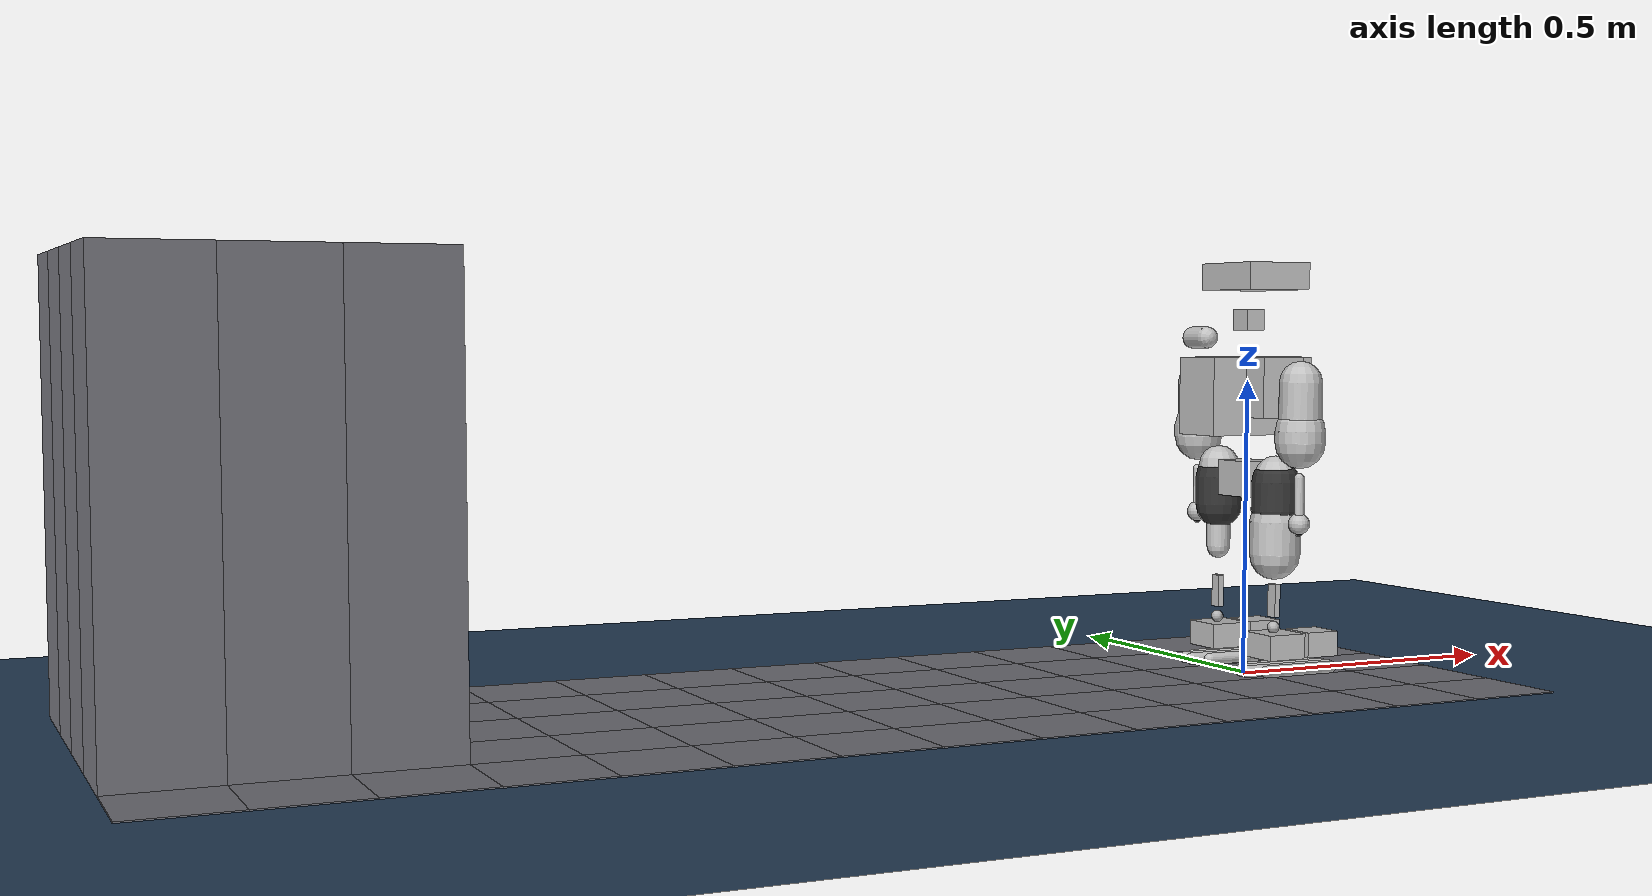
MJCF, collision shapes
<mujoco model="PiPlus_S_12L8A0G2H0W_SSE_ZedMini_260831">
  <compiler angle="radian" meshdir="../meshes/"/>

  <asset>
    <mesh name="base_link" content_type="model/stl" file="base_link.STL"/>
    <mesh name="torso_link" content_type="model/stl" file="torso_link.STL"/>
    <mesh name="r_shoulder_pitch_link" content_type="model/stl" file="r_shoulder_pitch_link.STL"/>
    <mesh name="r_shoulder_roll_link" content_type="model/stl" file="r_shoulder_roll_link.STL"/>
    <mesh name="r_upper_arm_link" content_type="model/stl" file="r_upper_arm_link.STL"/>
    <mesh name="r_elbow_link" content_type="model/stl" file="r_elbow_link.STL"/>
    <mesh name="r_wrist_link" content_type="model/stl" file="r_wrist_link.STL"/>
    <mesh name="l_shoulder_pitch_link" content_type="model/stl" file="l_shoulder_pitch_link.STL"/>
    <mesh name="l_shoulder_roll_link" content_type="model/stl" file="l_shoulder_roll_link.STL"/>
    <mesh name="l_upper_arm_link" content_type="model/stl" file="l_upper_arm_link.STL"/>
    <mesh name="l_elbow_link" content_type="model/stl" file="l_elbow_link.STL"/>
    <mesh name="l_wrist_link" content_type="model/stl" file="l_wrist_link.STL"/>
    <mesh name="head_yaw_link" content_type="model/stl" file="head_yaw_link.STL"/>
    <mesh name="head_pitch_link" content_type="model/stl" file="head_pitch_link.STL"/>
    <mesh name="camera_link" content_type="model/stl" file="camera_link.STL"/>
    <mesh name="r_hip_pitch_link" content_type="model/stl" file="r_hip_pitch_link.STL"/>
    <mesh name="r_hip_roll_link" content_type="model/stl" file="r_hip_roll_link.STL"/>
    <mesh name="r_thigh_link" content_type="model/stl" file="r_thigh_link.STL"/>
    <mesh name="r_calf_link" content_type="model/stl" file="r_calf_link.STL"/>
    <mesh name="r_ankle_pitch_link" content_type="model/stl" file="r_ankle_pitch_link.STL"/>
    <mesh name="r_ankle_roll_link" content_type="model/stl" file="r_ankle_roll_link.STL"/>
    <mesh name="l_hip_pitch_link" content_type="model/stl" file="l_hip_pitch_link.STL"/>
    <mesh name="l_hip_roll_link" content_type="model/stl" file="l_hip_roll_link.STL"/>
    <mesh name="l_thigh_link" content_type="model/stl" file="l_thigh_link.STL"/>
    <mesh name="l_calf_link" content_type="model/stl" file="l_calf_link.STL"/>
    <mesh name="l_ankle_pitch_link" content_type="model/stl" file="l_ankle_pitch_link.STL"/>
    <mesh name="l_ankle_roll_link" content_type="model/stl" file="l_ankle_roll_link.STL"/>
      <mesh name="parc_ms_terrain" file="/tmp/parc_ms_toe_adjusted/climbing_up_down_terrain_001_aug017_dm_aug5/climbing_up_down_terrain_001_aug017_dm_aug5_terrain_scaled_0.396471_0.396471_0.396471.obj"/>
</asset>

  <worldbody>
    <geom name="multi_boxes_parc_ms_terrain_visual" type="mesh" mesh="parc_ms_terrain" contype="0" conaffinity="0" rgba="0.45 0.45 0.48 1"/>
    <geom name="multi_boxes_parc_ms_terrain_cell_0_0" type="box" pos="-1.81084980 -0.30556145 0.00100000" size="0.07929430 0.07929415 0.00100000" contype="1" conaffinity="1" rgba="0.45 0.45 0.48 1"/>
    <geom name="multi_boxes_parc_ms_terrain_cell_0_1" type="box" pos="-1.81084980 -0.14697320 0.34806509" size="0.07929430 0.07929410 0.34806509" contype="1" conaffinity="1" rgba="0.45 0.45 0.48 1"/>
    <geom name="multi_boxes_parc_ms_terrain_cell_0_2" type="box" pos="-1.81084980 0.01161500 0.34806509" size="0.07929430 0.07929410 0.34806509" contype="1" conaffinity="1" rgba="0.45 0.45 0.48 1"/>
    <geom name="multi_boxes_parc_ms_terrain_cell_0_3" type="box" pos="-1.81084980 0.17020325 0.34806509" size="0.07929430 0.07929415 0.34806509" contype="1" conaffinity="1" rgba="0.45 0.45 0.48 1"/>
    <geom name="multi_boxes_parc_ms_terrain_cell_0_4" type="box" pos="-1.81084980 0.32879150 0.34806509" size="0.07929430 0.07929410 0.34806509" contype="1" conaffinity="1" rgba="0.45 0.45 0.48 1"/>
    <geom name="multi_boxes_parc_ms_terrain_cell_1_0" type="box" pos="-1.65226160 -0.30556145 0.00100000" size="0.07929390 0.07929415 0.00100000" contype="1" conaffinity="1" rgba="0.45 0.45 0.48 1"/>
    <geom name="multi_boxes_parc_ms_terrain_cell_1_1" type="box" pos="-1.65226160 -0.14697320 0.34806509" size="0.07929390 0.07929410 0.34806509" contype="1" conaffinity="1" rgba="0.45 0.45 0.48 1"/>
    <geom name="multi_boxes_parc_ms_terrain_cell_1_2" type="box" pos="-1.65226160 0.01161500 0.34806509" size="0.07929390 0.07929410 0.34806509" contype="1" conaffinity="1" rgba="0.45 0.45 0.48 1"/>
    <geom name="multi_boxes_parc_ms_terrain_cell_1_3" type="box" pos="-1.65226160 0.17020325 0.34806509" size="0.07929390 0.07929415 0.34806509" contype="1" conaffinity="1" rgba="0.45 0.45 0.48 1"/>
    <geom name="multi_boxes_parc_ms_terrain_cell_1_4" type="box" pos="-1.65226160 0.32879150 0.34806509" size="0.07929390 0.07929410 0.34806509" contype="1" conaffinity="1" rgba="0.45 0.45 0.48 1"/>
    <geom name="multi_boxes_parc_ms_terrain_cell_2_0" type="box" pos="-1.49367335 -0.30556145 0.00100000" size="0.07929435 0.07929415 0.00100000" contype="1" conaffinity="1" rgba="0.45 0.45 0.48 1"/>
    <geom name="multi_boxes_parc_ms_terrain_cell_2_1" type="box" pos="-1.49367335 -0.14697320 0.34806509" size="0.07929435 0.07929410 0.34806509" contype="1" conaffinity="1" rgba="0.45 0.45 0.48 1"/>
    <geom name="multi_boxes_parc_ms_terrain_cell_2_2" type="box" pos="-1.49367335 0.01161500 0.34806509" size="0.07929435 0.07929410 0.34806509" contype="1" conaffinity="1" rgba="0.45 0.45 0.48 1"/>
    <geom name="multi_boxes_parc_ms_terrain_cell_2_3" type="box" pos="-1.49367335 0.17020325 0.34806509" size="0.07929435 0.07929415 0.34806509" contype="1" conaffinity="1" rgba="0.45 0.45 0.48 1"/>
    <geom name="multi_boxes_parc_ms_terrain_cell_2_4" type="box" pos="-1.49367335 0.32879150 0.34806509" size="0.07929435 0.07929410 0.34806509" contype="1" conaffinity="1" rgba="0.45 0.45 0.48 1"/>
    <geom name="multi_boxes_parc_ms_terrain_cell_3_0" type="box" pos="-1.33508510 -0.30556145 0.00100000" size="0.07929390 0.07929415 0.00100000" contype="1" conaffinity="1" rgba="0.45 0.45 0.48 1"/>
    <geom name="multi_boxes_parc_ms_terrain_cell_3_1" type="box" pos="-1.33508510 -0.14697320 0.00100000" size="0.07929390 0.07929410 0.00100000" contype="1" conaffinity="1" rgba="0.45 0.45 0.48 1"/>
    <geom name="multi_boxes_parc_ms_terrain_cell_3_2" type="box" pos="-1.33508510 0.01161500 0.00100000" size="0.07929390 0.07929410 0.00100000" contype="1" conaffinity="1" rgba="0.45 0.45 0.48 1"/>
    <geom name="multi_boxes_parc_ms_terrain_cell_3_3" type="box" pos="-1.33508510 0.17020325 0.00100000" size="0.07929390 0.07929415 0.00100000" contype="1" conaffinity="1" rgba="0.45 0.45 0.48 1"/>
    <geom name="multi_boxes_parc_ms_terrain_cell_3_4" type="box" pos="-1.33508510 0.32879150 0.00100000" size="0.07929390 0.07929410 0.00100000" contype="1" conaffinity="1" rgba="0.45 0.45 0.48 1"/>
    <geom name="multi_boxes_parc_ms_terrain_cell_4_0" type="box" pos="-1.17649710 -0.30556145 0.00100000" size="0.07929410 0.07929415 0.00100000" contype="1" conaffinity="1" rgba="0.45 0.45 0.48 1"/>
    <geom name="multi_boxes_parc_ms_terrain_cell_4_1" type="box" pos="-1.17649710 -0.14697320 0.00100000" size="0.07929410 0.07929410 0.00100000" contype="1" conaffinity="1" rgba="0.45 0.45 0.48 1"/>
    <geom name="multi_boxes_parc_ms_terrain_cell_4_2" type="box" pos="-1.17649710 0.01161500 0.00100000" size="0.07929410 0.07929410 0.00100000" contype="1" conaffinity="1" rgba="0.45 0.45 0.48 1"/>
    <geom name="multi_boxes_parc_ms_terrain_cell_4_3" type="box" pos="-1.17649710 0.17020325 0.00100000" size="0.07929410 0.07929415 0.00100000" contype="1" conaffinity="1" rgba="0.45 0.45 0.48 1"/>
    <geom name="multi_boxes_parc_ms_terrain_cell_4_4" type="box" pos="-1.17649710 0.32879150 0.00100000" size="0.07929410 0.07929410 0.00100000" contype="1" conaffinity="1" rgba="0.45 0.45 0.48 1"/>
    <geom name="multi_boxes_parc_ms_terrain_cell_5_0" type="box" pos="-1.01790870 -0.30556145 0.00100000" size="0.07929430 0.07929415 0.00100000" contype="1" conaffinity="1" rgba="0.45 0.45 0.48 1"/>
    <geom name="multi_boxes_parc_ms_terrain_cell_5_1" type="box" pos="-1.01790870 -0.14697320 0.00100000" size="0.07929430 0.07929410 0.00100000" contype="1" conaffinity="1" rgba="0.45 0.45 0.48 1"/>
    <geom name="multi_boxes_parc_ms_terrain_cell_5_2" type="box" pos="-1.01790870 0.01161500 0.00100000" size="0.07929430 0.07929410 0.00100000" contype="1" conaffinity="1" rgba="0.45 0.45 0.48 1"/>
    <geom name="multi_boxes_parc_ms_terrain_cell_5_3" type="box" pos="-1.01790870 0.17020325 0.00100000" size="0.07929430 0.07929415 0.00100000" contype="1" conaffinity="1" rgba="0.45 0.45 0.48 1"/>
    <geom name="multi_boxes_parc_ms_terrain_cell_5_4" type="box" pos="-1.01790870 0.32879150 0.00100000" size="0.07929430 0.07929410 0.00100000" contype="1" conaffinity="1" rgba="0.45 0.45 0.48 1"/>
    <geom name="multi_boxes_parc_ms_terrain_cell_6_0" type="box" pos="-0.85932045 -0.30556145 0.00100000" size="0.07929395 0.07929415 0.00100000" contype="1" conaffinity="1" rgba="0.45 0.45 0.48 1"/>
    <geom name="multi_boxes_parc_ms_terrain_cell_6_1" type="box" pos="-0.85932045 -0.14697320 0.00100000" size="0.07929395 0.07929410 0.00100000" contype="1" conaffinity="1" rgba="0.45 0.45 0.48 1"/>
    <geom name="multi_boxes_parc_ms_terrain_cell_6_2" type="box" pos="-0.85932045 0.01161500 0.00100000" size="0.07929395 0.07929410 0.00100000" contype="1" conaffinity="1" rgba="0.45 0.45 0.48 1"/>
    <geom name="multi_boxes_parc_ms_terrain_cell_6_3" type="box" pos="-0.85932045 0.17020325 0.00100000" size="0.07929395 0.07929415 0.00100000" contype="1" conaffinity="1" rgba="0.45 0.45 0.48 1"/>
    <geom name="multi_boxes_parc_ms_terrain_cell_6_4" type="box" pos="-0.85932045 0.32879150 0.00100000" size="0.07929395 0.07929410 0.00100000" contype="1" conaffinity="1" rgba="0.45 0.45 0.48 1"/>
    <geom name="multi_boxes_parc_ms_terrain_cell_7_0" type="box" pos="-0.70073220 -0.30556145 0.00100000" size="0.07929430 0.07929415 0.00100000" contype="1" conaffinity="1" rgba="0.45 0.45 0.48 1"/>
    <geom name="multi_boxes_parc_ms_terrain_cell_7_1" type="box" pos="-0.70073220 -0.14697320 0.00100000" size="0.07929430 0.07929410 0.00100000" contype="1" conaffinity="1" rgba="0.45 0.45 0.48 1"/>
    <geom name="multi_boxes_parc_ms_terrain_cell_7_2" type="box" pos="-0.70073220 0.01161500 0.00100000" size="0.07929430 0.07929410 0.00100000" contype="1" conaffinity="1" rgba="0.45 0.45 0.48 1"/>
    <geom name="multi_boxes_parc_ms_terrain_cell_7_3" type="box" pos="-0.70073220 0.17020325 0.00100000" size="0.07929430 0.07929415 0.00100000" contype="1" conaffinity="1" rgba="0.45 0.45 0.48 1"/>
    <geom name="multi_boxes_parc_ms_terrain_cell_7_4" type="box" pos="-0.70073220 0.32879150 0.00100000" size="0.07929430 0.07929410 0.00100000" contype="1" conaffinity="1" rgba="0.45 0.45 0.48 1"/>
    <geom name="multi_boxes_parc_ms_terrain_cell_8_0" type="box" pos="-0.54214380 -0.30556145 0.00100000" size="0.07929410 0.07929415 0.00100000" contype="1" conaffinity="1" rgba="0.45 0.45 0.48 1"/>
    <geom name="multi_boxes_parc_ms_terrain_cell_8_1" type="box" pos="-0.54214380 -0.14697320 0.00100000" size="0.07929410 0.07929410 0.00100000" contype="1" conaffinity="1" rgba="0.45 0.45 0.48 1"/>
    <geom name="multi_boxes_parc_ms_terrain_cell_8_2" type="box" pos="-0.54214380 0.01161500 0.00100000" size="0.07929410 0.07929410 0.00100000" contype="1" conaffinity="1" rgba="0.45 0.45 0.48 1"/>
    <geom name="multi_boxes_parc_ms_terrain_cell_8_3" type="box" pos="-0.54214380 0.17020325 0.00100000" size="0.07929410 0.07929415 0.00100000" contype="1" conaffinity="1" rgba="0.45 0.45 0.48 1"/>
    <geom name="multi_boxes_parc_ms_terrain_cell_8_4" type="box" pos="-0.54214380 0.32879150 0.00100000" size="0.07929410 0.07929410 0.00100000" contype="1" conaffinity="1" rgba="0.45 0.45 0.48 1"/>
    <geom name="multi_boxes_parc_ms_terrain_cell_9_0" type="box" pos="-0.38355575 -0.30556145 0.00100000" size="0.07929395 0.07929415 0.00100000" contype="1" conaffinity="1" rgba="0.45 0.45 0.48 1"/>
    <geom name="multi_boxes_parc_ms_terrain_cell_9_1" type="box" pos="-0.38355575 -0.14697320 0.00100000" size="0.07929395 0.07929410 0.00100000" contype="1" conaffinity="1" rgba="0.45 0.45 0.48 1"/>
    <geom name="multi_boxes_parc_ms_terrain_cell_9_2" type="box" pos="-0.38355575 0.01161500 0.00100000" size="0.07929395 0.07929410 0.00100000" contype="1" conaffinity="1" rgba="0.45 0.45 0.48 1"/>
    <geom name="multi_boxes_parc_ms_terrain_cell_9_3" type="box" pos="-0.38355575 0.17020325 0.00100000" size="0.07929395 0.07929415 0.00100000" contype="1" conaffinity="1" rgba="0.45 0.45 0.48 1"/>
    <geom name="multi_boxes_parc_ms_terrain_cell_9_4" type="box" pos="-0.38355575 0.32879150 0.00100000" size="0.07929395 0.07929410 0.00100000" contype="1" conaffinity="1" rgba="0.45 0.45 0.48 1"/>
    <geom name="multi_boxes_parc_ms_terrain_cell_10_0" type="box" pos="-0.22496750 -0.30556145 0.00100000" size="0.07929430 0.07929415 0.00100000" contype="1" conaffinity="1" rgba="0.45 0.45 0.48 1"/>
    <geom name="multi_boxes_parc_ms_terrain_cell_10_1" type="box" pos="-0.22496750 -0.14697320 0.00100000" size="0.07929430 0.07929410 0.00100000" contype="1" conaffinity="1" rgba="0.45 0.45 0.48 1"/>
    <geom name="multi_boxes_parc_ms_terrain_cell_10_2" type="box" pos="-0.22496750 0.01161500 0.00100000" size="0.07929430 0.07929410 0.00100000" contype="1" conaffinity="1" rgba="0.45 0.45 0.48 1"/>
    <geom name="multi_boxes_parc_ms_terrain_cell_10_3" type="box" pos="-0.22496750 0.17020325 0.00100000" size="0.07929430 0.07929415 0.00100000" contype="1" conaffinity="1" rgba="0.45 0.45 0.48 1"/>
    <geom name="multi_boxes_parc_ms_terrain_cell_10_4" type="box" pos="-0.22496750 0.32879150 0.00100000" size="0.07929430 0.07929410 0.00100000" contype="1" conaffinity="1" rgba="0.45 0.45 0.48 1"/>
    <geom name="multi_boxes_parc_ms_terrain_cell_11_0" type="box" pos="-0.06637910 -0.30556145 0.00100000" size="0.07929410 0.07929415 0.00100000" contype="1" conaffinity="1" rgba="0.45 0.45 0.48 1"/>
    <geom name="multi_boxes_parc_ms_terrain_cell_11_1" type="box" pos="-0.06637910 -0.14697320 0.00100000" size="0.07929410 0.07929410 0.00100000" contype="1" conaffinity="1" rgba="0.45 0.45 0.48 1"/>
    <geom name="multi_boxes_parc_ms_terrain_cell_11_2" type="box" pos="-0.06637910 0.01161500 0.00100000" size="0.07929410 0.07929410 0.00100000" contype="1" conaffinity="1" rgba="0.45 0.45 0.48 1"/>
    <geom name="multi_boxes_parc_ms_terrain_cell_11_3" type="box" pos="-0.06637910 0.17020325 0.00100000" size="0.07929410 0.07929415 0.00100000" contype="1" conaffinity="1" rgba="0.45 0.45 0.48 1"/>
    <geom name="multi_boxes_parc_ms_terrain_cell_11_4" type="box" pos="-0.06637910 0.32879150 0.00100000" size="0.07929410 0.07929410 0.00100000" contype="1" conaffinity="1" rgba="0.45 0.45 0.48 1"/>
    <geom name="multi_boxes_parc_ms_terrain_cell_12_0" type="box" pos="0.09220915 -0.30556145 0.00100000" size="0.07929415 0.07929415 0.00100000" contype="1" conaffinity="1" rgba="0.45 0.45 0.48 1"/>
    <geom name="multi_boxes_parc_ms_terrain_cell_12_1" type="box" pos="0.09220915 -0.14697320 0.00100000" size="0.07929415 0.07929410 0.00100000" contype="1" conaffinity="1" rgba="0.45 0.45 0.48 1"/>
    <geom name="multi_boxes_parc_ms_terrain_cell_12_2" type="box" pos="0.09220915 0.01161500 0.00100000" size="0.07929415 0.07929410 0.00100000" contype="1" conaffinity="1" rgba="0.45 0.45 0.48 1"/>
    <geom name="multi_boxes_parc_ms_terrain_cell_12_3" type="box" pos="0.09220915 0.17020325 0.00100000" size="0.07929415 0.07929415 0.00100000" contype="1" conaffinity="1" rgba="0.45 0.45 0.48 1"/>
    <geom name="multi_boxes_parc_ms_terrain_cell_12_4" type="box" pos="0.09220915 0.32879150 0.00100000" size="0.07929415 0.07929410 0.00100000" contype="1" conaffinity="1" rgba="0.45 0.45 0.48 1"/>
    <geom name="multi_boxes_parc_ms_terrain_cell_13_0" type="box" pos="0.25079720 -0.30556145 0.00100000" size="0.07929390 0.07929415 0.00100000" contype="1" conaffinity="1" rgba="0.45 0.45 0.48 1"/>
    <geom name="multi_boxes_parc_ms_terrain_cell_13_1" type="box" pos="0.25079720 -0.14697320 0.00100000" size="0.07929390 0.07929410 0.00100000" contype="1" conaffinity="1" rgba="0.45 0.45 0.48 1"/>
    <geom name="multi_boxes_parc_ms_terrain_cell_13_2" type="box" pos="0.25079720 0.01161500 0.00100000" size="0.07929390 0.07929410 0.00100000" contype="1" conaffinity="1" rgba="0.45 0.45 0.48 1"/>
    <geom name="multi_boxes_parc_ms_terrain_cell_13_3" type="box" pos="0.25079720 0.17020325 0.00100000" size="0.07929390 0.07929415 0.00100000" contype="1" conaffinity="1" rgba="0.45 0.45 0.48 1"/>
    <geom name="multi_boxes_parc_ms_terrain_cell_13_4" type="box" pos="0.25079720 0.32879150 0.00100000" size="0.07929390 0.07929410 0.00100000" contype="1" conaffinity="1" rgba="0.45 0.45 0.48 1"/>

    <body name="base_link" pos="0 0 0.385">
      <inertial pos="-0.00056268 -1.51e-06 -0.0400787" quat="0.701382 0.707528 -0.0627262 0.0594389" mass="1.08902" diaginertia="0.00149612 0.00139626 0.000844654"/>
      <joint name="floating_base_joint" type="free" limited="false" actuatorfrclimited="false"/>
      <geom type="mesh" contype="0" conaffinity="0" group="1" density="0" rgba="0.752941 0.752941 0.752941 1" mesh="base_link"/>
      <geom size="0.03 0.04 0.03" pos="0 0 -0.05" type="box" rgba="0.752941 0.752941 0.752941 1"/>
      <body name="torso_link">
        <inertial pos="0 0 0.0896942" mass="4.39956" diaginertia="0.0243789 0.0236715 0.0227069"/>
        <geom type="mesh" contype="0" conaffinity="0" group="1" density="0" rgba="0.752941 0.752941 0.752941 1" mesh="torso_link"/>
        <geom size="0.099 0.05 0.065" pos="-0.005 0 0.09" type="box" rgba="0.752941 0.752941 0.752941 1"/>
        <geom size="0.04 0.025 0.05" pos="0 0.075 0.105" type="box" rgba="0.752941 0.752941 0.752941 1"/>
        <geom size="0.04 0.025 0.05" pos="0 -0.075 0.105" type="box" rgba="0.752941 0.752941 0.752941 1"/>
        <geom size="0.018 0.02" pos="-0.098 0 0.188" quat="0.707388 0.706825 0 0" type="capsule" rgba="0.752941 0.752941 0.752941 1"/>
        <body name="r_shoulder_pitch_link" pos="0 -0.1084 0.117">
          <inertial pos="0.00113579 -0.0175416 0.00021416" quat="-0.0449541 0.707378 0.01924 0.705142" mass="0.200908" diaginertia="0.000216269 0.000187175 0.000100576"/>
          <joint name="r_shoulder_pitch_joint" pos="0 0 0" axis="0 1 0" range="-4.18 1.04" actuatorfrcrange="-10 10" damping="0.02"/>
          <geom type="mesh" contype="0" conaffinity="0" group="1" density="0" rgba="0.752941 0.752941 0.752941 1" mesh="r_shoulder_pitch_link"/>
          <body name="r_shoulder_roll_link" pos="0 -0.038 0">
            <inertial pos="-0.00127795 -0.00018558 -0.00371445" quat="0.704743 -0.0791118 -0.0370215 0.704065" mass="0.354915" diaginertia="0.000196009 0.000184066 0.000173735"/>
            <joint name="r_shoulder_roll_joint" pos="0 0 0" axis="1 0 0" range="-3.092 0.015" actuatorfrcrange="-10 10" damping="0.02"/>
            <geom type="mesh" contype="0" conaffinity="0" group="1" density="0" rgba="0.752941 0.752941 0.752941 1" mesh="r_shoulder_roll_link"/>
            <body name="r_upper_arm_link" pos="0 0 -0.0724">
              <inertial pos="-0.00011614 0.00062446 0.00362573" quat="0.999924 -0.00707441 0.00536766 -0.00855162" mass="0.452217" diaginertia="0.000445008 0.00034182 0.000290672"/>
              <joint name="r_upper_arm_joint" pos="0 0 0" axis="0 0 1" range="-2.16 2.16" actuatorfrcrange="-10 10" damping="0.02"/>
              <geom type="mesh" contype="0" conaffinity="0" group="1" density="0" rgba="0.752941 0.752941 0.752941 1" mesh="r_upper_arm_link"/>
              <geom size="0.035 0.03" pos="0 0 0.04" type="capsule" rgba="0.752941 0.752941 0.752941 1"/>
              <geom size="0.041 0.01" pos="0 0 -0.02" type="capsule" rgba="0.752941 0.752941 0.752941 1"/>
              <body name="r_elbow_link" pos="0 0 -0.038">
                <inertial pos="2.953e-05 -0.00130322 -0.00200304" quat="0.574175 0.818475 0.0144276 -0.0146403" mass="0.326039" diaginertia="0.000161159 0.000149882 0.000144609"/>
                <joint name="r_elbow_joint" pos="0 0 0" axis="0 1 0" range="-2 2" actuatorfrcrange="-10 10" damping="0.02"/>
                <geom type="mesh" contype="0" conaffinity="0" group="1" density="0" rgba="0.752941 0.752941 0.752941 1" mesh="r_elbow_link"/>
                <body name="r_wrist_link" pos="0 0 -0.029">
                  <inertial pos="4.035e-05 -6.39e-06 -0.0382387" quat="0.508453 -0.00074672 -0.000272736 0.86109" mass="0.0720478" diaginertia="0.000113775 0.000113325 1.11197e-05"/>
                  <geom type="mesh" contype="0" conaffinity="0" group="1" density="0" rgba="0.752941 0.752941 0.752941 1" mesh="r_wrist_link"/>
                  <geom size="0.008 0.03" pos="0 0 -0.05" type="capsule" rgba="0.752941 0.752941 0.752941 1"/>
                  <geom size="0.0175" pos="0 0 -0.095" rgba="0.752941 0.752941 0.752941 1"/>
                  <body name="r_hand_tip_contact" pos="0 0 -0.11">
                    <geom name="r_hand_tip_contact" type="sphere" size="0.006" contype="1" conaffinity="1" rgba="0.2 0.2 0.2 1"/>
                  </body>
                </body>
              </body>
            </body>
          </body>
        </body>
        <body name="l_shoulder_pitch_link" pos="0 0.1084 0.117">
          <inertial pos="0.00113579 0.0175416 0.00021416" quat="0.0449541 0.707378 -0.01924 0.705142" mass="0.200908" diaginertia="0.000216269 0.000187175 0.000100576"/>
          <joint name="l_shoulder_pitch_joint" pos="0 0 0" axis="0 1 0" range="-4.18 1.04" actuatorfrcrange="-10 10" damping="0.02"/>
          <geom type="mesh" contype="0" conaffinity="0" group="1" density="0" rgba="0.752941 0.752941 0.752941 1" mesh="l_shoulder_pitch_link"/>
          <body name="l_shoulder_roll_link" pos="0 0.038 0">
            <inertial pos="-0.00127795 0.00018558 -0.00371445" quat="0.704065 -0.0370215 -0.0791118 0.704743" mass="0.354915" diaginertia="0.000196009 0.000184066 0.000173735"/>
            <joint name="l_shoulder_roll_joint" pos="0 0 0" axis="1 0 0" range="-0.015 3.092" actuatorfrcrange="-10 10" damping="0.02"/>
            <geom type="mesh" contype="0" conaffinity="0" group="1" density="0" rgba="0.752941 0.752941 0.752941 1" mesh="l_shoulder_roll_link"/>
            <body name="l_upper_arm_link" pos="0 0 -0.0724">
              <inertial pos="-0.00011614 -0.00062446 0.00362573" quat="0.999924 0.00707441 0.00536766 0.00855162" mass="0.452217" diaginertia="0.000445008 0.00034182 0.000290672"/>
              <joint name="l_upper_arm_joint" pos="0 0 0" axis="0 0 1" range="-2.16 2.16" actuatorfrcrange="-10 10" damping="0.02"/>
              <geom type="mesh" contype="0" conaffinity="0" group="1" density="0" rgba="0.752941 0.752941 0.752941 1" mesh="l_upper_arm_link"/>
              <geom size="0.035 0.03" pos="0 0 0.04" type="capsule" rgba="0.752941 0.752941 0.752941 1"/>
              <geom size="0.041 0.01" pos="0 0 -0.02" type="capsule" rgba="0.752941 0.752941 0.752941 1"/>
              <body name="l_elbow_link" pos="0 0 -0.038">
                <inertial pos="2.953e-05 0.00130322 -0.00200304" quat="0.818475 0.574175 0.0146403 -0.0144276" mass="0.326039" diaginertia="0.000161159 0.000149882 0.000144609"/>
                <joint name="l_elbow_joint" pos="0 0 0" axis="0 1 0" range="-2 2" actuatorfrcrange="-10 10" damping="0.02"/>
                <geom type="mesh" contype="0" conaffinity="0" group="1" density="0" rgba="0.752941 0.752941 0.752941 1" mesh="l_elbow_link"/>
                <body name="l_wrist_link" pos="0 0 -0.029">
                  <inertial pos="4.035e-05 6.39e-06 -0.0382387" quat="0.86109 -0.000272736 -0.00074672 0.508453" mass="0.0720478" diaginertia="0.000113775 0.000113325 1.11197e-05"/>
                  <geom type="mesh" contype="0" conaffinity="0" group="1" density="0" rgba="0.752941 0.752941 0.752941 1" mesh="l_wrist_link"/>
                  <geom size="0.008 0.03" pos="0 0 -0.05" type="capsule" rgba="0.752941 0.752941 0.752941 1"/>
                  <geom size="0.0175" pos="0 0 -0.095" rgba="0.752941 0.752941 0.752941 1"/>
                  <body name="l_hand_tip_contact" pos="0 0 -0.11">
                    <geom name="l_hand_tip_contact" type="sphere" size="0.006" contype="1" conaffinity="1" rgba="0.2 0.2 0.2 1"/>
                  </body>
                </body>
              </body>
            </body>
          </body>
        </body>
        <body name="head_yaw_link" pos="0 -0.00025 0.1981">
          <inertial pos="0 0 0.0190006" mass="0.270382" diaginertia="0.000150455 0.000150455 0.00011632"/>
          <joint name="head_yaw_joint" pos="0 0 0" axis="0 0 1" range="-1.5708 1.5708" actuatorfrcrange="-3.7 3.7" damping="0.02"/>
          <geom type="mesh" contype="0" conaffinity="0" group="1" density="0" rgba="0.752941 0.752941 0.752941 1" mesh="head_yaw_link"/>
          <geom size="0.0175 0.02 0.0175" pos="0 0 0.0195" type="box" rgba="0.752941 0.752941 0.752941 1"/>
          <body name="head_pitch_link" pos="0 0 0.0275">
            <inertial pos="0.0111337 4.629e-05 0.0620516" quat="0.41945 0.421594 -0.556663 0.58004" mass="0.622507" diaginertia="0.00197639 0.00163502 0.00118222"/>
            <joint name="head_pitch_joint" pos="0 0 0" axis="0 1 0" range="-1.05 0.994" actuatorfrcrange="-3.7 3.7" damping="0.02"/>
            <geom type="mesh" contype="0" conaffinity="0" group="1" density="0" rgba="0.752941 0.752941 0.752941 1" mesh="head_pitch_link"/>
            <geom size="0.06 0.07 0.0225" pos="0.012 0 0.065" type="box" rgba="0.752941 0.752941 0.752941 1"/>
            <body name="camera_link" pos="0.047642 0.031484 0.071792">
              <inertial pos="0.00195789 -0.0242456 7.52e-06" quat="0.707088 0.707088 0.00516483 0.00516483" mass="0.06" diaginertia="7.85355e-05 7.841e-05 5.96451e-06"/>
              <geom type="mesh" contype="0" conaffinity="0" group="1" density="0" rgba="0.752941 0.752941 0.752941 1" mesh="camera_link"/>
            </body>
          </body>
        </body>
      </body>
      <body name="r_hip_pitch_link" pos="0 -0.0474 -0.0435">
        <inertial pos="0.00028637 -0.0322289 -6.59e-06" quat="0.452291 0.582394 -0.438287 0.51396" mass="0.494398" diaginertia="0.000313703 0.00030744 0.000299166"/>
        <joint name="r_hip_pitch_joint" pos="0 0 0" axis="0 1 0" range="-1.6 1.6" actuatorfrcrange="-21 21" damping="0.02"/>
        <geom type="mesh" contype="0" conaffinity="0" group="1" density="0" rgba="0.752941 0.752941 0.752941 1" mesh="r_hip_pitch_link"/>
        <body name="r_hip_roll_link" pos="0 -0.0341 0">
          <inertial pos="0.00077706 -0.00028159 -0.0541482" quat="0.700226 0.068959 0.0637431 0.707719" mass="0.574061" diaginertia="0.00079708 0.000668376 0.000458825"/>
          <joint name="r_hip_roll_joint" pos="0 0 0" axis="1 0 0" range="-2.36 0.216" actuatorfrcrange="-21 21" damping="0.02"/>
          <geom type="mesh" contype="0" conaffinity="0" group="1" density="0" rgba="0.752941 0.752941 0.752941 1" mesh="r_hip_roll_link"/>
          <geom name="r_hip_roll_collision" type="capsule" size="0.04 0.024" pos="0 0 -0.033" contype="1" conaffinity="1" group="3" rgba="0.2 0.2 0.2 0.25"/>
          <body name="r_thigh_link" pos="-0.00035 0 -0.0924">
            <inertial pos="-0.00013038 0.00199098 -0.022861" quat="0.680907 0.732215 -0.00931788 0.0118323" mass="0.272491" diaginertia="0.000329745 0.000293744 0.000204861"/>
            <joint name="r_thigh_joint" pos="0 0 0" axis="0 0 1" range="-2.88 2.88" actuatorfrcrange="-21 21" damping="0.02"/>
            <geom type="mesh" contype="0" conaffinity="0" group="1" density="0" rgba="0.752941 0.752941 0.752941 1" mesh="r_thigh_link"/>
            <geom size="0.035 0.0275" pos="0 0 0.065" type="capsule" rgba="0.752941 0.752941 0.752941 1"/>
            <geom size="0.042 0.0275" pos="0 0 -0.01" type="capsule" rgba="0.752941 0.752941 0.752941 1"/>
            <body name="r_calf_link" pos="0 0 -0.05">
              <inertial pos="1.325e-05 -0.0023461 -0.0653976" quat="0.999998 -0.000977896 -0.000528441 -0.0015002" mass="0.910644" diaginertia="0.00444617 0.00443012 0.00047072"/>
              <joint name="r_calf_joint" pos="0 0 0" axis="0 1 0" range="-2.18 2.18" actuatorfrcrange="-21 21" damping="0.02"/>
              <geom type="mesh" contype="0" conaffinity="0" group="1" density="0" rgba="0.752941 0.752941 0.752941 1" mesh="r_calf_link"/>
              <geom size="0.005 0.01 0.0275" pos="0 0 -0.065" type="box" rgba="0.752941 0.752941 0.752941 1"/>
              <body name="r_ankle_pitch_link" pos="0 0 -0.14">
                <inertial pos="0.00674712 -0.00043184 -0.00019202" quat="-0.0040143 0.710412 -0.000556757 0.703774" mass="0.190273" diaginertia="0.000338692 0.000244749 0.000134109"/>
                <joint name="r_ankle_pitch_joint" pos="0 0 0" axis="0 1 0" range="-0.925 0.977" actuatorfrcrange="-21 21" damping="0.02"/>
                <geom type="mesh" contype="0" conaffinity="0" group="1" density="0" rgba="0.752941 0.752941 0.752941 1" mesh="r_ankle_pitch_link"/>
                <geom size="0.035 0.035 0.021" pos="0.0035 0 0" type="box" rgba="0.752941 0.752941 0.752941 1"/>
                <body name="r_ankle_intermediate_1_link" pos="0 0 0.03"><geom name="r_ankle_intermediate_1_link" type="sphere" size="0.01" contype="1" conaffinity="1" rgba="0.7 0.7 0.7 1"/></body>
                <body name="r_ankle_roll_link" pos="0.051 0 0">
                  <inertial pos="0.00447437 -7.632e-05 -0.0143535" quat="0.562603 0.426356 0.418946 0.571124" mass="0.712427" diaginertia="0.0017541 0.0016294 0.000563719"/>
                  <joint name="r_ankle_roll_joint" pos="0 0 0" axis="1 0 0" range="-0.785 0.785" actuatorfrcrange="-21 21" damping="0.02"/>
                  <geom type="mesh" contype="0" conaffinity="0" group="1" density="0" rgba="0.752941 0.752941 0.752941 1" mesh="r_ankle_roll_link"/>
                  <geom size="0.03 0.03 0.021" pos="0.028 0 0" type="box" rgba="0.752941 0.752941 0.752941 1"/>
                  <geom size="0.01 0.065" pos="-0.017 -0.025 -0.04" quat="0.707105 0 0.707108 0" type="capsule" rgba="0.752941 0.752941 0.752941 1"/>
                  <geom size="0.01 0.082" pos="-0.0272 -0.009 -0.04" quat="0.707105 0 -0.707108 0" type="capsule" rgba="0.752941 0.752941 0.752941 1"/>
                  <geom size="0.01 0.082" pos="-0.0272 0.009 -0.04" quat="0.707105 0 -0.707108 0" type="capsule" rgba="0.752941 0.752941 0.752941 1"/>
                  <geom size="0.01 0.065" pos="-0.017 0.025 -0.04" quat="0.707105 0 0.707108 0" type="capsule" rgba="0.752941 0.752941 0.752941 1"/>
                  <body name="r_foot_contact_front_outer" pos="0.04 -0.025 -0.044"><geom name="r_foot_contact_front_outer" type="sphere" size="0.006" contype="1" conaffinity="1" rgba="0.2 0.2 0.2 1"/></body>
                  <body name="r_foot_contact_toe" pos="0.055 0 -0.044"><geom name="r_foot_contact_toe" type="sphere" size="0.005" contype="1" conaffinity="1" rgba="0.2 0.2 0.2 1"/></body>
                  <body name="r_foot_contact_rear_outer" pos="-0.07 -0.025 -0.044"><geom name="r_foot_contact_rear_outer" type="sphere" size="0.006" contype="1" conaffinity="1" rgba="0.2 0.2 0.2 1"/></body>
                  <body name="r_foot_contact_front_inner" pos="0.04 0.025 -0.044"><geom name="r_foot_contact_front_inner" type="sphere" size="0.006" contype="1" conaffinity="1" rgba="0.2 0.2 0.2 1"/></body>
                  <body name="r_foot_contact_rear_inner" pos="-0.07 0.025 -0.044"><geom name="r_foot_contact_rear_inner" type="sphere" size="0.006" contype="1" conaffinity="1" rgba="0.2 0.2 0.2 1"/></body>
                </body>
              </body>
            </body>
          </body>
        </body>
      </body>
      <body name="l_hip_pitch_link" pos="0 0.0474 -0.0435">
        <inertial pos="0.00028637 0.0322289 -6.59e-06" quat="0.582394 0.452291 -0.51396 0.438287" mass="0.494398" diaginertia="0.000313703 0.00030744 0.000299166"/>
        <joint name="l_hip_pitch_joint" pos="0 0 0" axis="0 1 0" range="-1.6 1.6" actuatorfrcrange="-21 21" damping="0.02"/>
        <geom type="mesh" contype="0" conaffinity="0" group="1" density="0" rgba="0.752941 0.752941 0.752941 1" mesh="l_hip_pitch_link"/>
        <body name="l_hip_roll_link" pos="0 0.0341 0">
          <inertial pos="0.00077706 0.00028159 -0.0541482" quat="0.707719 0.0637431 0.068959 0.700226" mass="0.574061" diaginertia="0.00079708 0.000668376 0.000458825"/>
          <joint name="l_hip_roll_joint" pos="0 0 0" axis="1 0 0" range="-0.216 2.36" actuatorfrcrange="-21 21" damping="0.02"/>
          <geom type="mesh" contype="0" conaffinity="0" group="1" density="0" rgba="0.752941 0.752941 0.752941 1" mesh="l_hip_roll_link"/>
          <geom name="l_hip_roll_collision" type="capsule" size="0.04 0.024" pos="0 0 -0.033" contype="1" conaffinity="1" group="3" rgba="0.2 0.2 0.2 0.25"/>
          <body name="l_thigh_link" pos="-0.00035 0 -0.0924">
            <inertial pos="-0.00013038 -0.00199098 -0.022861" quat="0.732215 0.680907 -0.0118323 0.00931788" mass="0.272491" diaginertia="0.000329745 0.000293744 0.000204861"/>
            <joint name="l_thigh_joint" pos="0 0 0" axis="0 0 1" range="-2.88 2.88" actuatorfrcrange="-21 21" damping="0.02"/>
            <geom type="mesh" contype="0" conaffinity="0" group="1" density="0" rgba="0.752941 0.752941 0.752941 1" mesh="l_thigh_link"/>
            <geom size="0.02 0.0275" pos="0 0 -0.01" type="capsule" rgba="0.752941 0.752941 0.752941 1"/>
            <geom size="0.035 0.0275" pos="0 0 0.075" type="capsule" rgba="0.752941 0.752941 0.752941 1"/>
            <body name="l_calf_link" pos="0 0 -0.05">
              <inertial pos="1.325e-05 0.0023461 -0.0653976" quat="0.999998 0.000977896 -0.000528441 0.0015002" mass="0.910644" diaginertia="0.00444617 0.00443012 0.00047072"/>
              <joint name="l_calf_joint" pos="0 0 0" axis="0 1 0" range="-2.182 2.182" actuatorfrcrange="-21 21" damping="0.02"/>
              <geom type="mesh" contype="0" conaffinity="0" group="1" density="0" rgba="0.752941 0.752941 0.752941 1" mesh="l_calf_link"/>
              <geom size="0.005 0.01 0.0275" pos="0 0 -0.065" type="box" rgba="0.752941 0.752941 0.752941 1"/>
              <body name="l_ankle_pitch_link" pos="0 0 -0.14">
                <inertial pos="0.00674712 0.00043184 -0.00019202" quat="0.0040143 0.710412 0.000556757 0.703774" mass="0.190273" diaginertia="0.000338692 0.000244749 0.000134109"/>
                <joint name="l_ankle_pitch_joint" pos="0 0 0" axis="0 1 0" range="-0.925 0.977" actuatorfrcrange="-21 21" damping="0.02"/>
                <geom type="mesh" contype="0" conaffinity="0" group="1" density="0" rgba="0.752941 0.752941 0.752941 1" mesh="l_ankle_pitch_link"/>
                <geom size="0.035 0.035 0.021" pos="0.0035 0 0" type="box" rgba="0.752941 0.752941 0.752941 1"/>
                <body name="l_ankle_intermediate_1_link" pos="0 0 0.03"><geom name="l_ankle_intermediate_1_link" type="sphere" size="0.01" contype="1" conaffinity="1" rgba="0.7 0.7 0.7 1"/></body>
                <body name="l_ankle_roll_link" pos="0.051 0 0">
                  <inertial pos="0.00447437 7.632e-05 -0.0143535" quat="0.571124 0.418946 0.426356 0.562603" mass="0.712427" diaginertia="0.0017541 0.0016294 0.000563719"/>
                  <joint name="l_ankle_roll_joint" pos="0 0 0" axis="1 0 0" range="-0.785 0.785" actuatorfrcrange="-21 21" damping="0.02"/>
                  <geom type="mesh" contype="0" conaffinity="0" group="1" density="0" rgba="0.752941 0.752941 0.752941 1" mesh="l_ankle_roll_link"/>
                  <geom size="0.03 0.03 0.021" pos="0.028 0 0" type="box" rgba="0.752941 0.752941 0.752941 1"/>
                  <geom size="0.01 0.065" pos="-0.017 -0.025 -0.04" quat="0.707105 0 0.707108 0" type="capsule" rgba="0.752941 0.752941 0.752941 1"/>
                  <geom size="0.01 0.082" pos="-0.0272 -0.009 -0.04" quat="0.707105 0 -0.707108 0" type="capsule" rgba="0.752941 0.752941 0.752941 1"/>
                  <geom size="0.01 0.082" pos="-0.0272 0.009 -0.04" quat="0.707105 0 -0.707108 0" type="capsule" rgba="0.752941 0.752941 0.752941 1"/>
                  <geom size="0.01 0.065" pos="-0.017 0.025 -0.04" quat="0.707105 0 0.707108 0" type="capsule" rgba="0.752941 0.752941 0.752941 1"/>
                  <body name="l_foot_contact_front_outer" pos="0.04 0.025 -0.044"><geom name="l_foot_contact_front_outer" type="sphere" size="0.006" contype="1" conaffinity="1" rgba="0.2 0.2 0.2 1"/></body>
                  <body name="l_foot_contact_toe" pos="0.055 0 -0.044"><geom name="l_foot_contact_toe" type="sphere" size="0.005" contype="1" conaffinity="1" rgba="0.2 0.2 0.2 1"/></body>
                  <body name="l_foot_contact_rear_outer" pos="-0.07 0.025 -0.044"><geom name="l_foot_contact_rear_outer" type="sphere" size="0.006" contype="1" conaffinity="1" rgba="0.2 0.2 0.2 1"/></body>
                  <body name="l_foot_contact_front_inner" pos="0.04 -0.025 -0.044"><geom name="l_foot_contact_front_inner" type="sphere" size="0.006" contype="1" conaffinity="1" rgba="0.2 0.2 0.2 1"/></body>
                  <body name="l_foot_contact_rear_inner" pos="-0.07 -0.025 -0.044"><geom name="l_foot_contact_rear_inner" type="sphere" size="0.006" contype="1" conaffinity="1" rgba="0.2 0.2 0.2 1"/></body>
                </body>
              </body>
            </body>
          </body>
        </body>
      </body>
    </body>
  </worldbody>
   <!-- setup scene -->
  <statistic center="1.0 0.7 1.0" extent="0.8"/>
  <visual>
    <headlight diffuse="0.6 0.6 0.6" ambient="0.1 0.1 0.1" specular="0.9 0.9 0.9"/>
    <rgba haze="0.15 0.25 0.35 1"/>
    <global azimuth="-140" elevation="-20"/>
  </visual>
  <asset>
    <texture type="skybox" builtin="flat" rgb1="0 0 0" rgb2="0 0 0" width="512" height="3072"/>
    <texture type="2d" name="groundplane" builtin="checker" mark="edge" rgb1="0.2 0.3 0.4" rgb2="0.1 0.2 0.3" markrgb="0.8 0.8 0.8" width="300" height="300"/>
    <material name="groundplane" texture="groundplane" texuniform="true" texrepeat="5 5" reflectance="0.2"/>
  </asset>
  <worldbody>
    <light pos="1 0 3.5" dir="0 0 -1" directional="true"/>
    <geom contype="15" conaffinity="15"  name="floor" size="0 0 0.05" type="plane" material="groundplane"/>
  </worldbody>
</mujoco>
